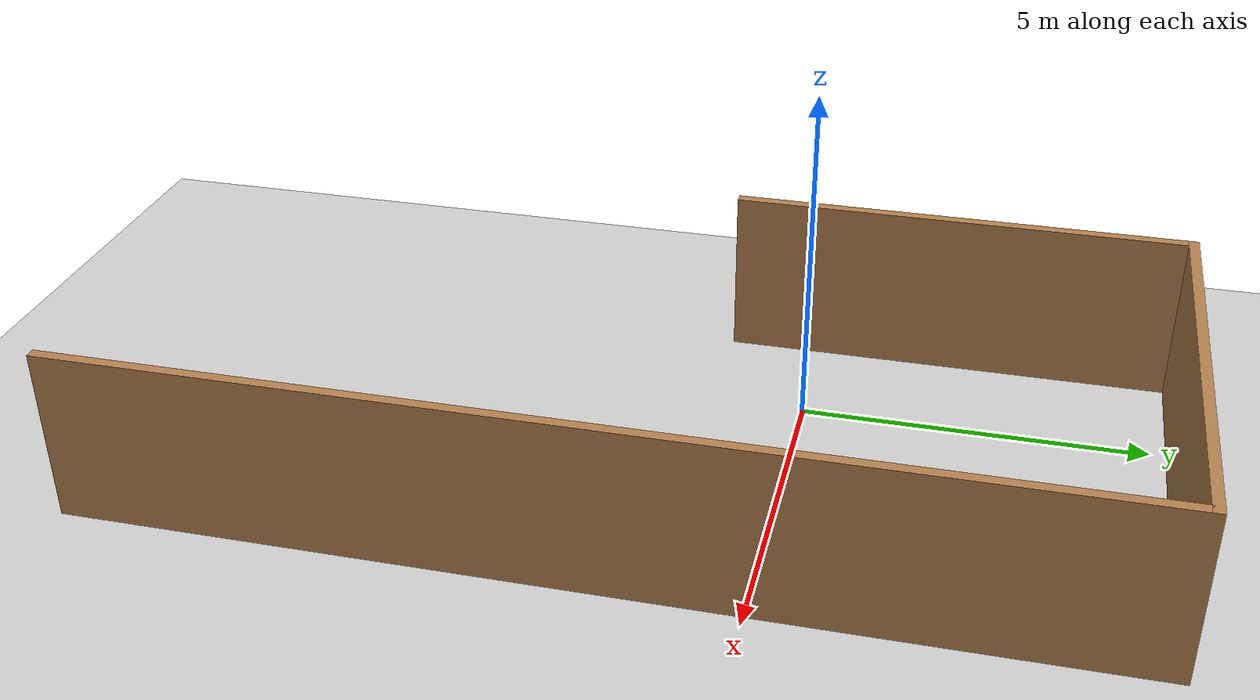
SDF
<sdf version="1.7">
 <world name="default">
  <model name="ground_plane">
   <static>1</static>
   <link name="link">
    <collision name="collision">
     <geometry><plane><normal>0 0 1</normal><size>100 100</size></plane></geometry>
     <surface>
      <contact><collide_bitmask>65535</collide_bitmask></contact>
      <friction><ode><mu>100</mu><mu2>50</mu2></ode></friction>
     </surface>
    </collision>
    <visual name="visual">
     <cast_shadows>0</cast_shadows>
     <geometry><plane><normal>0 0 1</normal><size>100 100</size></plane></geometry>
     <material>
      <script><uri>file://media/materials/scripts/gazebo.material</uri><name>Gazebo/Grey</name></script>
     </material>
    </visual>
   </link>
  </model>
  <model name="mundo_normal1">
   <pose>-1.83298 -2.00796 0 0 -0 0</pose>
   <link name="Wall_0">
    <collision name="Wall_0_Collision">
     <geometry><box><size>6.75 0.15 2.5</size></box></geometry>
     <pose>0 0 1.25 0 -0 0</pose>
    </collision>
    <visual name="Wall_0_Visual">
     <pose>0 0 1.25 0 -0 0</pose>
     <geometry><box><size>6.75 0.15 2.5</size></box></geometry>
     <material>
      <script><uri>file://media/materials/scripts/gazebo.material</uri><name>Gazebo/Wood</name></script>
      <ambient>1 1 1 1</ambient>
     </material>
     <meta><layer>0</layer></meta>
    </visual>
    <pose>0 4 0 0 -0 1.5708</pose>
   </link>
   <link name="Wall_1">
    <collision name="Wall_1_Collision">
     <geometry><box><size>6.75 0.15 2.5</size></box></geometry>
     <pose>0 0 1.25 0 -0 0</pose>
    </collision>
    <visual name="Wall_1_Visual">
     <pose>0 0 1.25 0 -0 0</pose>
     <geometry><box><size>6.75 0.15 2.5</size></box></geometry>
     <material>
      <script><uri>file://media/materials/scripts/gazebo.material</uri><name>Gazebo/Wood</name></script>
      <ambient>1 1 1 1</ambient>
     </material>
     <meta><layer>0</layer></meta>
    </visual>
    <pose>3.3 7.3 0 0 -0 0</pose>
   </link>
   <link name="Wall_2">
    <collision name="Wall_2_Collision">
     <geometry><box><size>14.75 0.15 2.5</size></box></geometry>
     <pose>0 0 1.25 0 -0 0</pose>
    </collision>
    <visual name="Wall_2_Visual">
     <pose>0 0 1.25 0 -0 0</pose>
     <geometry><box><size>14.75 0.15 2.5</size></box></geometry>
     <material>
      <script><uri>file://media/materials/scripts/gazebo.material</uri><name>Gazebo/Wood</name></script>
      <ambient>1 1 1 1</ambient>
     </material>
     <meta><layer>0</layer></meta>
    </visual>
    <pose>6.6 0 0 0 -0 -1.5708</pose>
   </link>
   <static>1</static>
  </model>
 </world>
</sdf>
